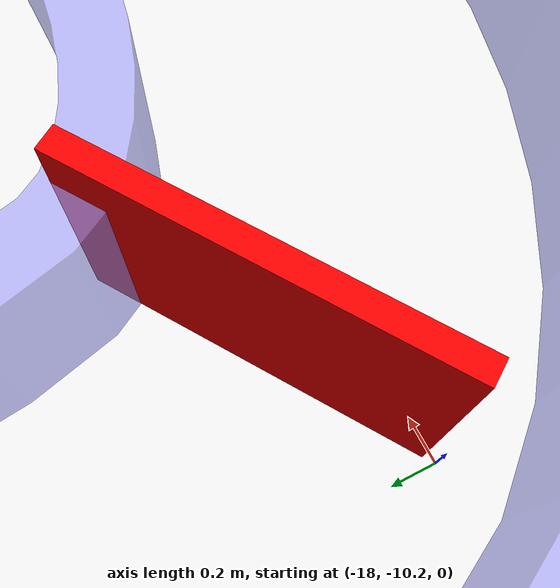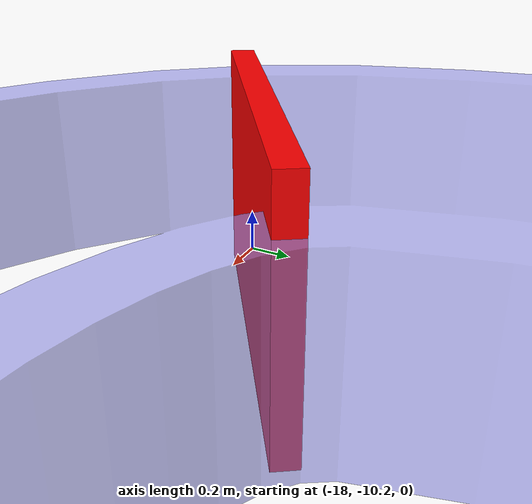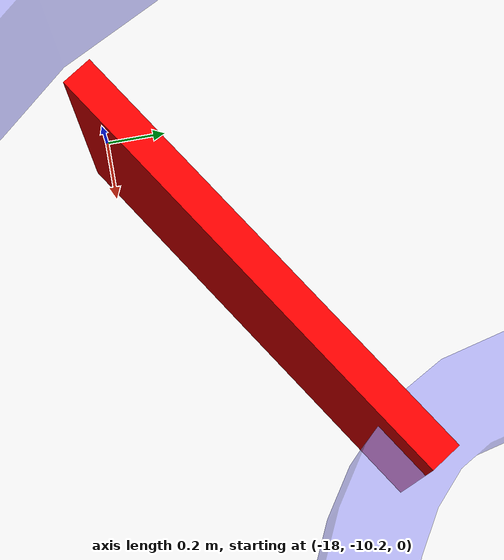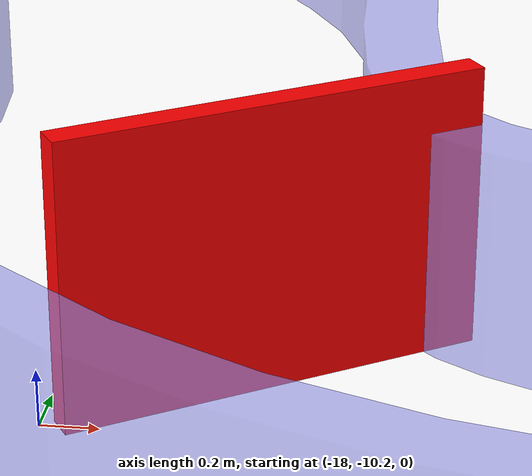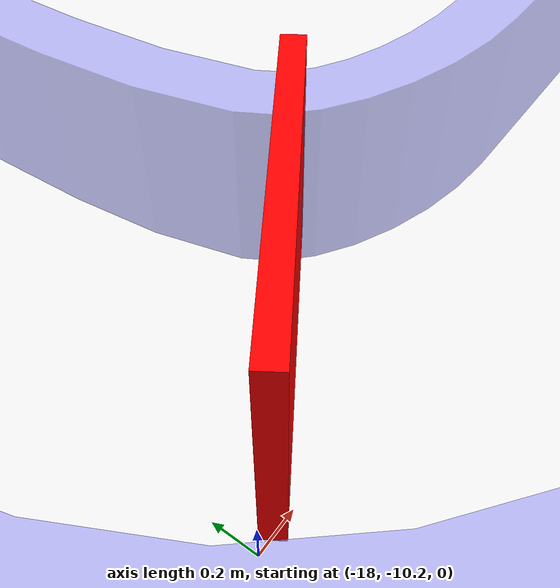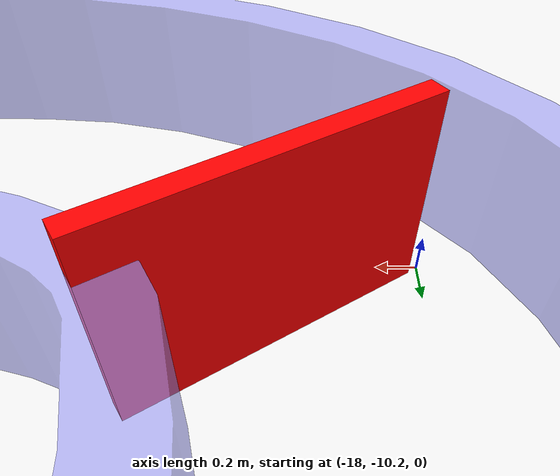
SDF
<sdf version='1.6'>
  <world name='default'>
    <gravity>0 0 -9.8</gravity>

    <model name='part5.obj'>
      <static>1</static>
      <pose frame=''>0 0 0 0 0 0</pose>
      <link name='link_d5'>
        <inertial>
          <mass>0</mass>
          <inertia>
            <ixx>0.166667</ixx> <ixy>0</ixy> <ixz>0</ixz>
            <iyy>0.166667</iyy> <iyz>0</iyz> <izz>0.166667</izz>
          </inertia>
        </inertial>
        <collision concave='yes' name='collision_5'>
          <geometry>
            <mesh>
              <scale>1 1 1</scale>
              <uri>part5.obj</uri>
            </mesh>
          </geometry>
        </collision>
        <visual name='visual'>
          <geometry>
            <mesh>
              <scale>1 1 1</scale>
              <uri>part5.obj</uri>
            </mesh>
          </geometry>
          <material>
            <ambient>1 1 1 1</ambient>
            <diffuse>0.6 0.6 1 .6</diffuse>
            <specular>0.1 0.1 0.1 1</specular>
            <emissive>0 0 0 0</emissive>
          </material>
        </visual>
      </link>
    </model>

    <model name='wall_stop'>
      <static>1</static>
      <pose>-17.3 -9.8 0.5 0 0 10 </pose>
      <link name='wall_stop_link'>
        <inertial>
          <mass>0</mass>
          <inertia>
            <ixx>0.0</ixx> <ixy>0.0</ixy> <ixz>0.0</ixz>
            <iyy>0.0</iyy> <iyz>0.0</iyz> <izz>0.0</izz>
          </inertia>
        </inertial>
        <collision name='collision_wall'>
          <geometry>
            <box>
              <size>1.5 0.1 1.0</size>
            </box>
          </geometry>
        </collision>
        <visual name='visual_wall'>
          <geometry>
            <box>
              <size>1.5 0.1 1.0</size>
            </box>
          </geometry>
          <material>
            <ambient>1 0 0 1</ambient>
            <diffuse>1 0 0 1</diffuse>
            <specular>0.1 0.1 0.1 1</specular>
            <emissive>0 0 0 0</emissive>
          </material>
        </visual>
      </link>
    </model>

  </world>
</sdf>
